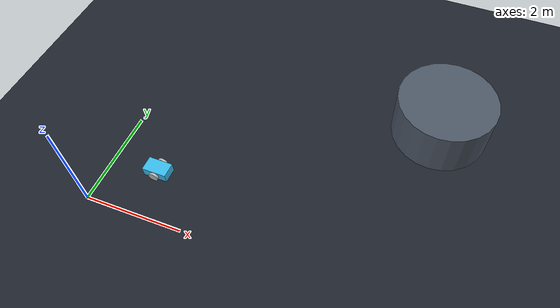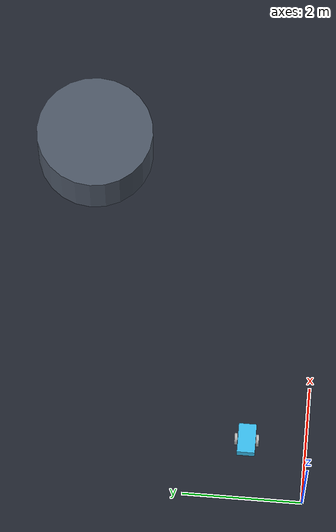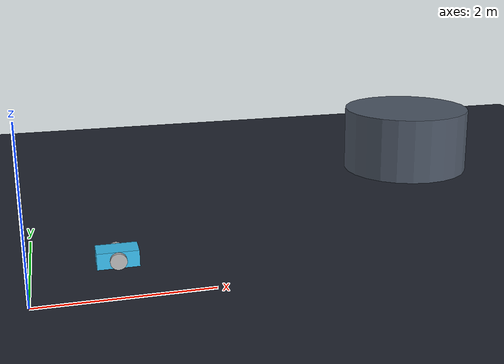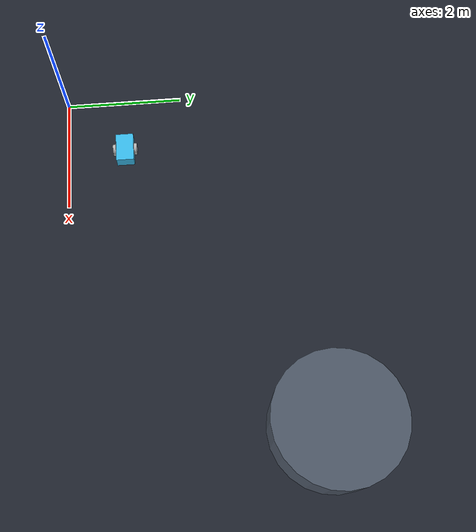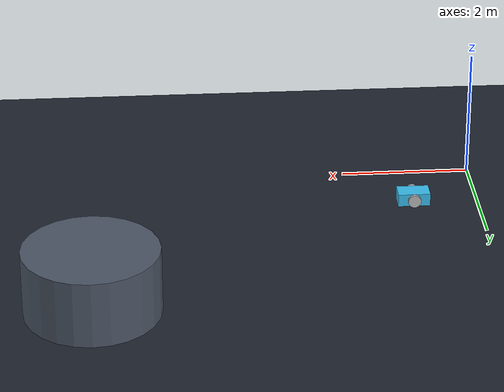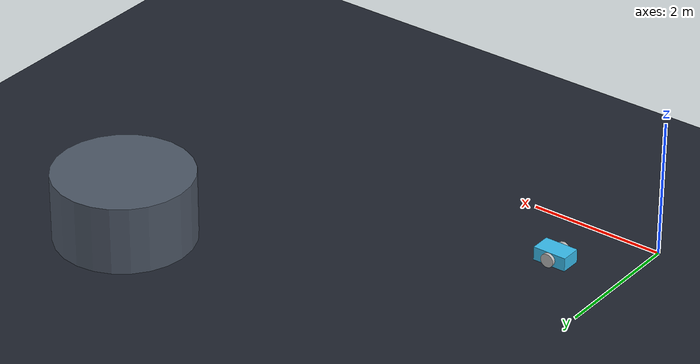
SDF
<?xml version="1.0" ?>
<sdf version="1.8">
  <world name="multirobot">
    <physics name="1ms" type="ignored">
      <max_step_size>0.001</max_step_size>
      <real_time_factor>1.0</real_time_factor>
    </physics>
    <plugin filename="gz-sim-physics-system" name="gz::sim::systems::Physics"/>
    <plugin filename="gz-sim-user-commands-system" name="gz::sim::systems::UserCommands"/>
    <plugin filename="gz-sim-scene-broadcaster-system" name="gz::sim::systems::SceneBroadcaster"/>

    <light type="directional" name="sun">
      <cast_shadows>true</cast_shadows>
      <pose>0 0 10 0 0 0</pose>
      <diffuse>0.8 0.8 0.8 1</diffuse>
      <specular>0.2 0.2 0.2 1</specular>
      <direction>-0.5 0.1 -0.9</direction>
    </light>

    <model name="ground_plane">
      <static>true</static>
      <link name="link">
        <collision name="collision">
          <geometry><plane><normal>0 0 1</normal><size>40 40</size></plane></geometry>
        </collision>
        <visual name="visual">
          <geometry><plane><normal>0 0 1</normal><size>40 40</size></plane></geometry>
          <material><ambient>0.1 0.12 0.16 1</ambient><diffuse>0.12 0.14 0.18 1</diffuse></material>
        </visual>
      </link>
    </model>

    <model name="obstacle_a">
      <static>true</static>
      <pose>6 4 0.5 0 0 0</pose>
      <link name="link">
        <collision name="collision"><geometry><cylinder><radius>1.0</radius><length>1</length></cylinder></geometry></collision>
        <visual name="visual"><geometry><cylinder><radius>1.0</radius><length>1</length></cylinder></geometry>
          <material><ambient>0.3 0.34 0.4 1</ambient><diffuse>0.3 0.34 0.4 1</diffuse></material></visual>
      </link>
    </model>

    <model name="robot_1">
      <pose>1 1 0.1 0 0 0</pose>
      <link name="base">
        <inertial><mass>2.0</mass>
          <inertia><ixx>0.05</ixx><iyy>0.05</iyy><izz>0.08</izz><ixy>0</ixy><ixz>0</ixz><iyz>0</iyz></inertia>
        </inertial>
        <collision name="collision"><geometry><box><size>0.5 0.3 0.2</size></box></geometry></collision>
        <visual name="visual"><geometry><box><size>0.5 0.3 0.2</size></box></geometry>
          <material><ambient>0.22 0.74 0.93 1</ambient><diffuse>0.22 0.74 0.93 1</diffuse></material></visual>
      </link>
      <link name="left_wheel">
        <pose>0 0.18 0 -1.5707 0 0</pose>
        <inertial><mass>0.2</mass>
          <inertia><ixx>0.001</ixx><iyy>0.001</iyy><izz>0.001</izz><ixy>0</ixy><ixz>0</ixz><iyz>0</iyz></inertia>
        </inertial>
        <collision name="collision"><geometry><cylinder><radius>0.1</radius><length>0.05</length></cylinder></geometry></collision>
        <visual name="visual"><geometry><cylinder><radius>0.1</radius><length>0.05</length></cylinder></geometry></visual>
      </link>
      <link name="right_wheel">
        <pose>0 -0.18 0 -1.5707 0 0</pose>
        <inertial><mass>0.2</mass>
          <inertia><ixx>0.001</ixx><iyy>0.001</iyy><izz>0.001</izz><ixy>0</ixy><ixz>0</ixz><iyz>0</iyz></inertia>
        </inertial>
        <collision name="collision"><geometry><cylinder><radius>0.1</radius><length>0.05</length></cylinder></geometry></collision>
        <visual name="visual"><geometry><cylinder><radius>0.1</radius><length>0.05</length></cylinder></geometry></visual>
      </link>
      <joint name="left_wheel_joint" type="revolute">
        <parent>base</parent><child>left_wheel</child>
        <axis><xyz>0 1 0</xyz></axis>
      </joint>
      <joint name="right_wheel_joint" type="revolute">
        <parent>base</parent><child>right_wheel</child>
        <axis><xyz>0 1 0</xyz></axis>
      </joint>
      <plugin filename="gz-sim-diff-drive-system" name="gz::sim::systems::DiffDrive">
        <left_joint>left_wheel_joint</left_joint>
        <right_joint>right_wheel_joint</right_joint>
        <wheel_separation>0.36</wheel_separation>
        <wheel_radius>0.1</wheel_radius>
        <topic>/model/robot_1/cmd_vel</topic>
      </plugin>
      <plugin filename="gz-sim-pose-publisher-system" name="gz::sim::systems::PosePublisher">
        <publish_link_pose>false</publish_link_pose>
        <publish_model_pose>true</publish_model_pose>
        <use_pose_vector_msg>false</use_pose_vector_msg>
        <static_publisher>false</static_publisher>
      </plugin>
    </model>
  </world>
</sdf>
